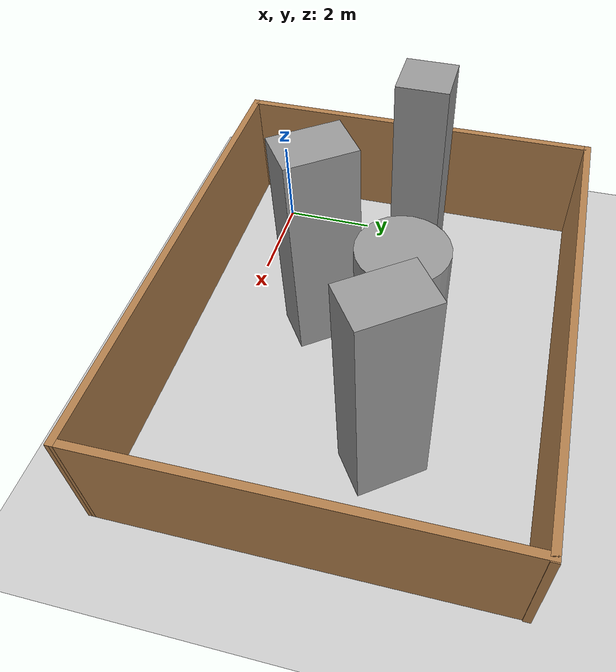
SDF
<sdf version="1.7">
 <world name="default">
  <light name="sun" type="directional">
   <pose>0 0 10 0 -0 0</pose>
   <diffuse>0.8 0.8 0.8 1</diffuse>
   <specular>0.2 0.2 0.2 1</specular>
   <attenuation>
    <range>1000</range>
    <constant>0.9</constant>
    <linear>0.01</linear>
    <quadratic>0.001</quadratic>
   </attenuation>
   <direction>-0.5 0.1 -0.9</direction>
   <spot><inner_angle>0</inner_angle><outer_angle>0</outer_angle><falloff>0</falloff></spot>
  </light>
  <model name="ground_plane">
   <static>1</static>
   <link name="link">
    <collision name="collision">
     <geometry><plane><normal>0 0 1</normal><size>100 100</size></plane></geometry>
     <surface>
      <contact><collide_bitmask>65535</collide_bitmask></contact>
      <friction><ode><mu>100</mu><mu2>50</mu2></ode></friction>
     </surface>
    </collision>
    <visual name="visual">
     <cast_shadows>0</cast_shadows>
     <geometry><plane><normal>0 0 1</normal><size>100 100</size></plane></geometry>
     <material>
      <script><uri>file://media/materials/scripts/gazebo.material</uri><name>Gazebo/Grey</name></script>
     </material>
    </visual>
   </link>
  </model>
  <gravity>0 0 -9.8</gravity>
  <magnetic_field>6e-06 2.3e-05 -4.2e-05</magnetic_field>
  <atmosphere type="adiabatic"/>
  <physics type="ode">
   <max_step_size>0.001</max_step_size>
   <real_time_factor>1</real_time_factor>
   <real_time_update_rate>1000</real_time_update_rate>
  </physics>
  <scene><ambient>0.4 0.4 0.4 1</ambient><background>0.7 0.7 0.7 1</background><shadows>1</shadows></scene>
  <spherical_coordinates>
   <surface_model>EARTH_WGS84</surface_model>
   <latitude_deg>0</latitude_deg>
   <longitude_deg>0</longitude_deg>
   <elevation>0</elevation>
   <heading_deg>0</heading_deg>
  </spherical_coordinates>
  <model name="Untitled">
   <pose>3.89251 2.72916 0 0 -0 0</pose>
   <link name="Wall_18">
    <collision name="Wall_18_Collision">
     <geometry><box><size>8 0.15 2.5</size></box></geometry>
     <pose>0 0 1.25 0 -0 0</pose>
    </collision>
    <visual name="Wall_18_Visual">
     <pose>0 0 1.25 0 -0 0</pose>
     <geometry><box><size>8 0.15 2.5</size></box></geometry>
     <material>
      <script><uri>file://media/materials/scripts/gazebo.material</uri><name>Gazebo/Wood</name></script>
      <ambient>1 1 1 1</ambient>
     </material>
     <meta><layer>0</layer></meta>
    </visual>
    <pose>-4.92509 0.150442 0 0 -0 -1.5708</pose>
   </link>
   <link name="Wall_19">
    <collision name="Wall_19_Collision">
     <geometry><box><size>10 0.15 2.5</size></box></geometry>
     <pose>0 0 1.25 0 -0 0</pose>
    </collision>
    <visual name="Wall_19_Visual">
     <pose>0 0 1.25 0 -0 0</pose>
     <geometry><box><size>10 0.15 2.5</size></box></geometry>
     <material>
      <script><uri>file://media/materials/scripts/gazebo.material</uri><name>Gazebo/Wood</name></script>
      <ambient>1 1 1 1</ambient>
     </material>
     <meta><layer>0</layer></meta>
    </visual>
    <pose>-9.5e-05 -3.77456 0 0 -0 0</pose>
   </link>
   <link name="Wall_20">
    <collision name="Wall_20_Collision">
     <geometry><box><size>8.1008 0.15 2.5</size></box></geometry>
     <pose>0 0 1.25 0 -0 0</pose>
    </collision>
    <visual name="Wall_20_Visual">
     <pose>0 0 1.25 0 -0 0</pose>
     <geometry><box><size>8.1008 0.15 2.5</size></box></geometry>
     <material>
      <script><uri>file://media/materials/scripts/gazebo.material</uri><name>Gazebo/Wood</name></script>
      <ambient>1 1 1 1</ambient>
     </material>
     <meta><layer>0</layer></meta>
    </visual>
    <pose>4.91485 0.200726 0 0 -0 1.57333</pose>
   </link>
   <link name="Wall_21">
    <collision name="Wall_21_Collision">
     <geometry><box><size>10 0.15 2.5</size></box></geometry>
     <pose>0 0 1.25 0 -0 0</pose>
    </collision>
    <visual name="Wall_21_Visual">
     <pose>0 0 1.25 0 -0 0</pose>
     <geometry><box><size>10 0.15 2.5</size></box></geometry>
     <material>
      <script><uri>file://media/materials/scripts/gazebo.material</uri><name>Gazebo/Wood</name></script>
      <ambient>1 1 1 1</ambient>
     </material>
     <meta><layer>0</layer></meta>
    </visual>
    <pose>-9.5e-05 4.17601 0 0 -0 3.14159</pose>
   </link>
   <static>1</static>
  </model>
  <model name="unit_box">
   <pose>1.577 3.50975 2.69282 0 0 -0.012866</pose>
   <link name="link">
    <inertial>
     <mass>1</mass>
     <inertia>
      <ixx>0.166667</ixx>
      <ixy>0</ixy>
      <ixz>0</ixz>
      <iyy>0.166667</iyy>
      <iyz>0</iyz>
      <izz>0.166667</izz>
     </inertia>
    </inertial>
    <collision name="collision"><geometry><box><size>1 1 5.38565</size></box></geometry></collision>
    <visual name="visual">
     <geometry><box><size>1 1 5.38565</size></box></geometry>
     <material>
      <script><name>Gazebo/Grey</name><uri>file://media/materials/scripts/gazebo.material</uri></script>
     </material>
    </visual>
   </link>
  </model>
  <model name="unit_cylinder">
   <pose>4.53377 3.73195 1.91427 0 -0 0.000155</pose>
   <link name="link">
    <inertial>
     <mass>1</mass>
     <inertia><ixx>0.145833</ixx><ixy>0</ixy><ixz>0</ixz><iyy>0.145833</iyy><iyz>0</iyz><izz>0.125</izz></inertia>
    </inertial>
    <collision name="collision">
     <geometry><cylinder><radius>0.861685</radius><length>3.82855</length></cylinder></geometry>
    </collision>
    <visual name="visual">
     <geometry><cylinder><radius>0.861685</radius><length>3.82855</length></cylinder></geometry>
     <material>
      <script><name>Gazebo/Grey</name><uri>file://media/materials/scripts/gazebo.material</uri></script>
     </material>
    </visual>
   </link>
  </model>
  <model name="unit_box_0">
   <pose>6.50797 3.87618 2.4129 0.002196 -0 -0.93266</pose>
   <link name="link">
    <inertial>
     <mass>1</mass>
     <inertia>
      <ixx>0.166667</ixx>
      <ixy>0</ixy>
      <ixz>0</ixz>
      <iyy>0.166667</iyy>
      <iyz>0</iyz>
      <izz>0.166667</izz>
     </inertia>
    </inertial>
    <collision name="collision"><geometry><box><size>1.4386 1 4.82362</size></box></geometry></collision>
    <visual name="visual">
     <geometry><box><size>1.4386 1 4.82362</size></box></geometry>
     <material>
      <script><name>Gazebo/Grey</name><uri>file://media/materials/scripts/gazebo.material</uri></script>
     </material>
    </visual>
   </link>
  </model>
  <model name="unit_box_0_clone">
   <pose>3.33786 1.80124 2.41282 0.002037 -0 -0.93266</pose>
   <link name="link">
    <inertial>
     <mass>1</mass>
     <inertia>
      <ixx>0.166667</ixx>
      <ixy>0</ixy>
      <ixz>0</ixz>
      <iyy>0.166667</iyy>
      <iyz>0</iyz>
      <izz>0.166667</izz>
     </inertia>
    </inertial>
    <collision name="collision"><geometry><box><size>1.4386 1 4.82362</size></box></geometry></collision>
    <visual name="visual">
     <geometry><box><size>1.4386 1 4.82362</size></box></geometry>
     <material>
      <script><name>Gazebo/Grey</name><uri>file://media/materials/scripts/gazebo.material</uri></script>
     </material>
    </visual>
   </link>
  </model>
 </world>
</sdf>
